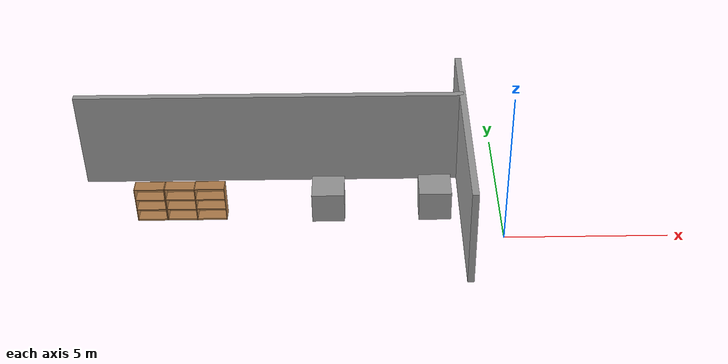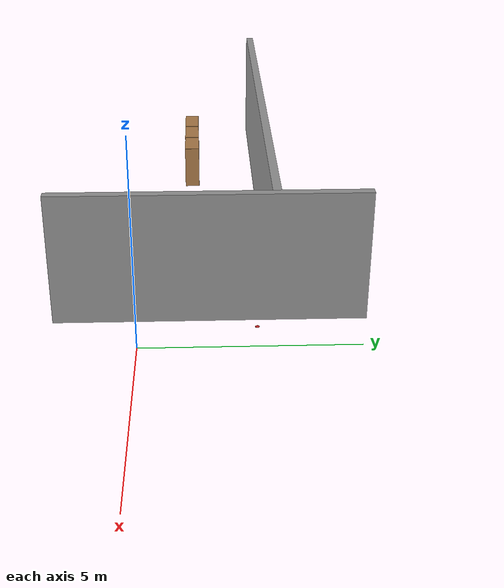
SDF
<sdf version="1.6">
 <world name="square_world">
  <model name="wall46">
   <static>1</static>
   <pose>-1.16748 1.62732 1.6 0 0 -1.5708</pose>
   <link name="wall_link">
    <inertial><mass>10000</mass></inertial>
    <collision name="wall_collision">
     <geometry><box><size>7.22526 0.2 3.2</size></box></geometry>
     <surface><contact><collide_bitmask>2</collide_bitmask></contact></surface>
    </collision>
    <visual name="wall_visual">
     <geometry><box><size>7.22526 0.2 3.2</size></box></geometry>
     <material><script><name>Gazebo/Grey</name><uri>__default__</uri></script></material>
    </visual>
   </link>
  </model>
  <model name="wall48">
   <static>1</static>
   <pose>-7.17 3.12 1.6 0 -0 0</pose>
   <link name="wall_link">
    <inertial><mass>10000</mass></inertial>
    <collision name="wall_collision">
     <geometry><box><size>12.07 0.2 3.2</size></box></geometry>
     <surface><contact><collide_bitmask>2</collide_bitmask></contact></surface>
    </collision>
    <visual name="wall_visual">
     <geometry><box><size>12.07 0.2 3.2</size></box></geometry>
     <material><script><name>Gazebo/Grey</name><uri>__default__</uri></script></material>
    </visual>
   </link>
  </model>
  <model name="wall1128">
   <static>1</static>
   <pose>-0.78 2.7 0 0 -0 0</pose>
   <link name="wall_link">
    <inertial><mass>10000</mass></inertial>
    <collision name="wall_collision">
     <geometry><cylinder><radius>0.05</radius><length>0.001</length></cylinder></geometry>
     <surface><contact><collide_bitmask>2</collide_bitmask></contact></surface>
    </collision>
    <visual name="wall_visual">
     <geometry><cylinder><radius>0.05</radius><length>0.001</length></cylinder></geometry>
     <material><script><name>Gazebo/Red</name><uri>__default__</uri></script></material>
    </visual>
   </link>
  </model>
  <model name="bookshelf">
   <static>1</static>
   <link name="link">
    <inertial><mass>1</mass></inertial>
    <collision name="back">
     <pose>0 0.005 0.6 0 -0 0</pose>
     <geometry><box><size>0.9 0.01 1.2</size></box></geometry>
    </collision>
    <visual name="visual1">
     <pose>0 0.005 0.6 0 -0 0</pose>
     <geometry><box><size>0.9 0.01 1.2</size></box></geometry>
     <material>
      <script><uri>file://media/materials/scripts/gazebo.material</uri><name>Gazebo/Wood</name></script>
     </material>
    </visual>
    <collision name="left_side">
     <pose>0.45 -0.195 0.6 0 -0 0</pose>
     <geometry><box><size>0.02 0.4 1.2</size></box></geometry>
    </collision>
    <visual name="visual2">
     <pose>0.45 -0.195 0.6 0 -0 0</pose>
     <geometry><box><size>0.02 0.4 1.2</size></box></geometry>
     <material>
      <script><uri>file://media/materials/scripts/gazebo.material</uri><name>Gazebo/Wood</name></script>
     </material>
    </visual>
    <collision name="right_side">
     <pose>-0.45 -0.195 0.6 0 -0 0</pose>
     <geometry><box><size>0.02 0.4 1.2</size></box></geometry>
    </collision>
    <visual name="visual3">
     <pose>-0.45 -0.195 0.6 0 -0 0</pose>
     <geometry><box><size>0.02 0.4 1.2</size></box></geometry>
     <material>
      <script><uri>file://media/materials/scripts/gazebo.material</uri><name>Gazebo/Wood</name></script>
     </material>
    </visual>
    <collision name="bottom">
     <pose>0 -0.195 0.03 0 -0 0</pose>
     <geometry><box><size>0.88 0.4 0.06</size></box></geometry>
    </collision>
    <visual name="visual4">
     <pose>0 -0.195 0.03 0 -0 0</pose>
     <geometry><box><size>0.88 0.4 0.06</size></box></geometry>
     <material>
      <script><uri>file://media/materials/scripts/gazebo.material</uri><name>Gazebo/Wood</name></script>
     </material>
    </visual>
    <collision name="top">
     <pose>0 -0.195 1.19 0 -0 0</pose>
     <geometry><box><size>0.88 0.4 0.02</size></box></geometry>
    </collision>
    <visual name="visual5">
     <pose>0 -0.195 1.19 0 -0 0</pose>
     <geometry><box><size>0.88 0.4 0.02</size></box></geometry>
     <material>
      <script><uri>file://media/materials/scripts/gazebo.material</uri><name>Gazebo/Wood</name></script>
     </material>
    </visual>
    <collision name="low_shelf">
     <pose>0 -0.195 0.43 0 -0 0</pose>
     <geometry><box><size>0.88 0.4 0.02</size></box></geometry>
    </collision>
    <visual name="visual6">
     <pose>0 -0.195 0.43 0 -0 0</pose>
     <geometry><box><size>0.88 0.4 0.02</size></box></geometry>
     <material>
      <script><uri>file://media/materials/scripts/gazebo.material</uri><name>Gazebo/Wood</name></script>
     </material>
    </visual>
    <collision name="high_shelf">
     <pose>0 -0.195 0.8 0 -0 0</pose>
     <geometry><box><size>0.88 0.4 0.02</size></box></geometry>
    </collision>
    <visual name="visual7">
     <pose>0 -0.195 0.8 0 -0 0</pose>
     <geometry><box><size>0.88 0.4 0.02</size></box></geometry>
     <material>
      <script><uri>file://media/materials/scripts/gazebo.material</uri><name>Gazebo/Wood</name></script>
     </material>
    </visual>
   </link>
   <pose>-10.8025 1.39282 0 0 -0 0</pose>
  </model>
  <model name="bookshelf_0">
   <static>1</static>
   <link name="link">
    <inertial><mass>1</mass></inertial>
    <collision name="back">
     <pose>0 0.005 0.6 0 -0 0</pose>
     <geometry><box><size>0.9 0.01 1.2</size></box></geometry>
    </collision>
    <visual name="visual1">
     <pose>0 0.005 0.6 0 -0 0</pose>
     <geometry><box><size>0.9 0.01 1.2</size></box></geometry>
     <material>
      <script><uri>file://media/materials/scripts/gazebo.material</uri><name>Gazebo/Wood</name></script>
     </material>
    </visual>
    <collision name="left_side">
     <pose>0.45 -0.195 0.6 0 -0 0</pose>
     <geometry><box><size>0.02 0.4 1.2</size></box></geometry>
    </collision>
    <visual name="visual2">
     <pose>0.45 -0.195 0.6 0 -0 0</pose>
     <geometry><box><size>0.02 0.4 1.2</size></box></geometry>
     <material>
      <script><uri>file://media/materials/scripts/gazebo.material</uri><name>Gazebo/Wood</name></script>
     </material>
    </visual>
    <collision name="right_side">
     <pose>-0.45 -0.195 0.6 0 -0 0</pose>
     <geometry><box><size>0.02 0.4 1.2</size></box></geometry>
    </collision>
    <visual name="visual3">
     <pose>-0.45 -0.195 0.6 0 -0 0</pose>
     <geometry><box><size>0.02 0.4 1.2</size></box></geometry>
     <material>
      <script><uri>file://media/materials/scripts/gazebo.material</uri><name>Gazebo/Wood</name></script>
     </material>
    </visual>
    <collision name="bottom">
     <pose>0 -0.195 0.03 0 -0 0</pose>
     <geometry><box><size>0.88 0.4 0.06</size></box></geometry>
    </collision>
    <visual name="visual4">
     <pose>0 -0.195 0.03 0 -0 0</pose>
     <geometry><box><size>0.88 0.4 0.06</size></box></geometry>
     <material>
      <script><uri>file://media/materials/scripts/gazebo.material</uri><name>Gazebo/Wood</name></script>
     </material>
    </visual>
    <collision name="top">
     <pose>0 -0.195 1.19 0 -0 0</pose>
     <geometry><box><size>0.88 0.4 0.02</size></box></geometry>
    </collision>
    <visual name="visual5">
     <pose>0 -0.195 1.19 0 -0 0</pose>
     <geometry><box><size>0.88 0.4 0.02</size></box></geometry>
     <material>
      <script><uri>file://media/materials/scripts/gazebo.material</uri><name>Gazebo/Wood</name></script>
     </material>
    </visual>
    <collision name="low_shelf">
     <pose>0 -0.195 0.43 0 -0 0</pose>
     <geometry><box><size>0.88 0.4 0.02</size></box></geometry>
    </collision>
    <visual name="visual6">
     <pose>0 -0.195 0.43 0 -0 0</pose>
     <geometry><box><size>0.88 0.4 0.02</size></box></geometry>
     <material>
      <script><uri>file://media/materials/scripts/gazebo.material</uri><name>Gazebo/Wood</name></script>
     </material>
    </visual>
    <collision name="high_shelf">
     <pose>0 -0.195 0.8 0 -0 0</pose>
     <geometry><box><size>0.88 0.4 0.02</size></box></geometry>
    </collision>
    <visual name="visual7">
     <pose>0 -0.195 0.8 0 -0 0</pose>
     <geometry><box><size>0.88 0.4 0.02</size></box></geometry>
     <material>
      <script><uri>file://media/materials/scripts/gazebo.material</uri><name>Gazebo/Wood</name></script>
     </material>
    </visual>
   </link>
   <pose>-9.87668 1.39173 0 0 -0 0</pose>
  </model>
  <model name="bookshelf_1">
   <static>1</static>
   <link name="link">
    <inertial><mass>1</mass></inertial>
    <collision name="back">
     <pose>0 0.005 0.6 0 -0 0</pose>
     <geometry><box><size>0.9 0.01 1.2</size></box></geometry>
    </collision>
    <visual name="visual1">
     <pose>0 0.005 0.6 0 -0 0</pose>
     <geometry><box><size>0.9 0.01 1.2</size></box></geometry>
     <material>
      <script><uri>file://media/materials/scripts/gazebo.material</uri><name>Gazebo/Wood</name></script>
     </material>
    </visual>
    <collision name="left_side">
     <pose>0.45 -0.195 0.6 0 -0 0</pose>
     <geometry><box><size>0.02 0.4 1.2</size></box></geometry>
    </collision>
    <visual name="visual2">
     <pose>0.45 -0.195 0.6 0 -0 0</pose>
     <geometry><box><size>0.02 0.4 1.2</size></box></geometry>
     <material>
      <script><uri>file://media/materials/scripts/gazebo.material</uri><name>Gazebo/Wood</name></script>
     </material>
    </visual>
    <collision name="right_side">
     <pose>-0.45 -0.195 0.6 0 -0 0</pose>
     <geometry><box><size>0.02 0.4 1.2</size></box></geometry>
    </collision>
    <visual name="visual3">
     <pose>-0.45 -0.195 0.6 0 -0 0</pose>
     <geometry><box><size>0.02 0.4 1.2</size></box></geometry>
     <material>
      <script><uri>file://media/materials/scripts/gazebo.material</uri><name>Gazebo/Wood</name></script>
     </material>
    </visual>
    <collision name="bottom">
     <pose>0 -0.195 0.03 0 -0 0</pose>
     <geometry><box><size>0.88 0.4 0.06</size></box></geometry>
    </collision>
    <visual name="visual4">
     <pose>0 -0.195 0.03 0 -0 0</pose>
     <geometry><box><size>0.88 0.4 0.06</size></box></geometry>
     <material>
      <script><uri>file://media/materials/scripts/gazebo.material</uri><name>Gazebo/Wood</name></script>
     </material>
    </visual>
    <collision name="top">
     <pose>0 -0.195 1.19 0 -0 0</pose>
     <geometry><box><size>0.88 0.4 0.02</size></box></geometry>
    </collision>
    <visual name="visual5">
     <pose>0 -0.195 1.19 0 -0 0</pose>
     <geometry><box><size>0.88 0.4 0.02</size></box></geometry>
     <material>
      <script><uri>file://media/materials/scripts/gazebo.material</uri><name>Gazebo/Wood</name></script>
     </material>
    </visual>
    <collision name="low_shelf">
     <pose>0 -0.195 0.43 0 -0 0</pose>
     <geometry><box><size>0.88 0.4 0.02</size></box></geometry>
    </collision>
    <visual name="visual6">
     <pose>0 -0.195 0.43 0 -0 0</pose>
     <geometry><box><size>0.88 0.4 0.02</size></box></geometry>
     <material>
      <script><uri>file://media/materials/scripts/gazebo.material</uri><name>Gazebo/Wood</name></script>
     </material>
    </visual>
    <collision name="high_shelf">
     <pose>0 -0.195 0.8 0 -0 0</pose>
     <geometry><box><size>0.88 0.4 0.02</size></box></geometry>
    </collision>
    <visual name="visual7">
     <pose>0 -0.195 0.8 0 -0 0</pose>
     <geometry><box><size>0.88 0.4 0.02</size></box></geometry>
     <material>
      <script><uri>file://media/materials/scripts/gazebo.material</uri><name>Gazebo/Wood</name></script>
     </material>
    </visual>
   </link>
   <pose>-8.96697 1.39594 0 0 -0 0</pose>
  </model>
  <model name="unit_box_0">
   <pose>-5.35804 1.36486 0.499995 0 1e-05 0</pose>
   <link name="link">
    <inertial>
     <mass>1</mass>
     <inertia>
      <ixx>0.166667</ixx>
      <ixy>0</ixy>
      <ixz>0</ixz>
      <iyy>0.166667</iyy>
      <iyz>0</iyz>
      <izz>0.166667</izz>
     </inertia>
    </inertial>
    <collision name="collision"><geometry><box><size>1 1 1</size></box></geometry></collision>
    <visual name="visual">
     <geometry><box><size>1 1 1</size></box></geometry>
     <material>
      <script><name>Gazebo/Grey</name><uri>file://media/materials/scripts/gazebo.material</uri></script>
     </material>
    </visual>
   </link>
  </model>
  <model name="unit_box_1">
   <pose>-2.0637 1.39535 0.499995 0 1e-05 0</pose>
   <link name="link">
    <inertial>
     <mass>1</mass>
     <inertia>
      <ixx>0.166667</ixx>
      <ixy>0</ixy>
      <ixz>0</ixz>
      <iyy>0.166667</iyy>
      <iyz>0</iyz>
      <izz>0.166667</izz>
     </inertia>
    </inertial>
    <collision name="collision"><geometry><box><size>1 1 1</size></box></geometry></collision>
    <visual name="visual">
     <geometry><box><size>1 1 1</size></box></geometry>
     <material>
      <script><name>Gazebo/Grey</name><uri>file://media/materials/scripts/gazebo.material</uri></script>
     </material>
    </visual>
   </link>
  </model>
 </world>
</sdf>
